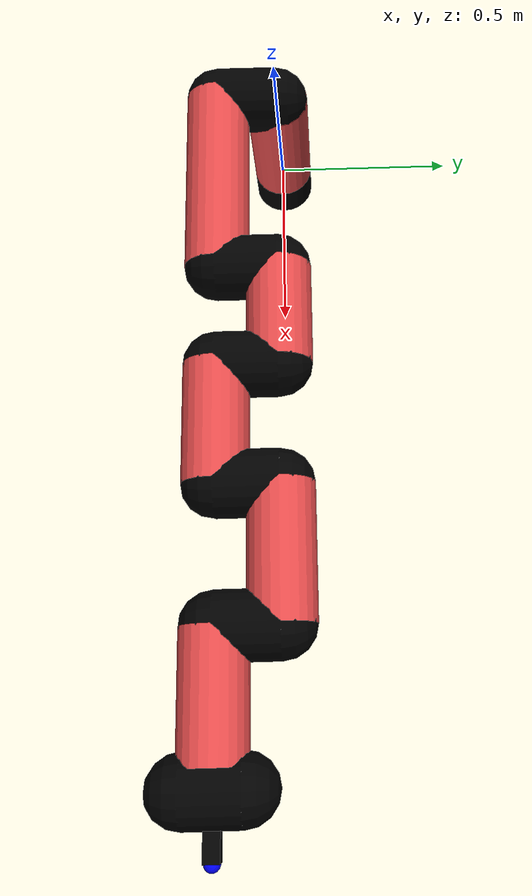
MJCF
<mujoco model="manipulator">
		<compiler angle="degree" coordinate="local" inertiafromgeom="auto" meshdir="meshes/"/>
		<option gravity="0 0 0" integrator="RK4" iterations="30" timestep="0.01"/>

		<default>
		<joint armature="1" limited="true" stiffness="10" damping="15" frictionloss="5.0"/>
		<geom conaffinity="1" condim="3" contype="1" friction=".5 .1 .1" margin="0.002"/>
		<motor ctrllimited="true"/>
		<position ctrllimited="true"/>
		</default>

		<asset>
		<texture builtin="gradient" height="100" rgb1="1.0 1.0 1.0" rgb2="1.0 1.0 1.0" type="skybox" width="100"/>
		<texture builtin="flat" height="32" name="arm_tex" rgb1="0.9 0.3 0.3" type="2d" width="32"/>
		<texture builtin="flat" height="32" name="gripper_tex" rgb1="0.0 0.0 0.0" type="cube" width="32"/>

		<material name="arm_mat" shininess="0.1" specular="0.1" texture="arm_tex"/>
		<material name="gripper_mat" shininess="1" specular="1" texture="gripper_tex"/>
		</asset>

		<worldbody>
		<light cutoff="45" diffuse=".8 .8 .8" dir="0 0.16 -1" directional="false" name="light" pos="0 -2.0 8.0" specular="0.3 0.3 0.3"/>

		<body name="base_link" pos="0 0 -0.1">
		<geom fromto="0 0 0 0 0 0.1" material="arm_mat" name="base_link" rgba="0.0 0.0 0.0 1" size="0.085" type="cylinder"/>
		</body>

		<body name="l1" pos="0 0 0">
<geom fromto="0 0 0 0 0 0.36" material="arm_mat" name="l1" rgba="0.9 0.3 0.3 1" size="0.085" type="cylinder"/>
<geom fromto="0 0 0.36 0 -0.16 0.36" material="arm_mat" name="l1_ex" rgba="0.0 0.0 0.0 1" size="0.085" type="capsule"/>
<joint axis="0 0 1" name="j1" pos="0 0 0" range="-90 90" damping="29.86" frictionloss="8.01"/>

<body name="l2" pos="0 -0.16 0.36">
<geom fromto="0 0 0 0.51 0 0" material="arm_mat" name="l2" rgba="0.9 0.3 0.3 1" size="0.085" type="cylinder"/>
<geom fromto="0.51 0 0 0.51 0.16 0" material="arm_mat" name="l2_ex" rgba="0.0 0.0 0.0 1" size="0.085" type="capsule"/>
<joint axis="0.0 1.0 0.0" name="j2" pos="0 0 0" range="-90 60" damping="25.15" frictionloss="12.07"/>

<body name="l3" pos="0.51 0.16 0">
<geom fromto="0 0 0 0.27 0 0" material="arm_mat" name="l3" rgba="0.9 0.3 0.3 1" size="0.085" type="cylinder"/>
<geom fromto="0.27 0 0 0.27 -0.16 0" material="arm_mat" name="l3_ex" rgba="0.0 0.0 0.0 1" size="0.085" type="capsule"/>
<joint axis="0.0 1.0 0.0" name="j3" pos="0 0 0" range="-30 60" damping="36.01" frictionloss="10.6"/>

<body name="l4" pos="0.27 -0.16 0">
<geom fromto="0 0 0 0.31 0 0" material="arm_mat" name="l4" rgba="0.9 0.3 0.3 1" size="0.085" type="cylinder"/>
<geom fromto="0.31 0 0 0.31 0.16 0" material="arm_mat" name="l4_ex" rgba="0.0 0.0 0.0 1" size="0.085" type="capsule"/>
<joint axis="0.0 1.0 0.0" name="j4" pos="0 0 0" range="-30 60" damping="31.14" frictionloss="10.4"/>

<body name="l5" pos="0.31 0.16 0">
<geom fromto="0 0 0 0.34 0 0" material="arm_mat" name="l5" rgba="0.9 0.3 0.3 1" size="0.085" type="cylinder"/>
<geom fromto="0.34 0 0 0.34 -0.16 0" material="arm_mat" name="l5_ex" rgba="0.0 0.0 0.0 1" size="0.085" type="capsule"/>
<joint axis="0.0 1.0 0.0" name="j5" pos="0 0 0" range="-30 60" damping="29.09" frictionloss="11.43"/>

<body name="l6" pos="0.34 -0.16 0">
<geom fromto="0 0 0 0.31 0 0" material="arm_mat" name="l6" rgba="0.9 0.3 0.3 1" size="0.085" type="cylinder"/>
<joint axis="0.0 1.0 0.0" name="j6" pos="0 0 0" range="-30 60" damping="27.06" frictionloss="8.85"/>

<body name="gripper" pos="0.31 0 0">
<geom fromto="0.05 -0.07 0 0.05 0.07 0" material="gripper_mat" name="gripper" rgba="0.0 0.0 0.0 1" size="0.085" type="capsule"/><joint axis="1 0 0" name="j7" pos="0 0 0" range="-90 90" damping="15" frictionloss="5.0"/><body name="finger" pos="0.1 0 0">
<geom fromto="0 0.0 0 0.1 0.0 0" material="gripper_mat" name="finger" rgba="0.0 0.0 0.0 1" size="0.020 0.06 0.06" type="box"/>
</body>
<site name="current" pos="0.2 0. 0.0" rgba="0. 0. 1.0 1" size="0.02" type="sphere"/>
</body>
</body>
</body>
</body>
</body>
</body>
</body>
</worldbody>
<actuator>
<motor ctrllimited="true" ctrlrange="-1.0 1.0" joint="j1" gear="94.56"/>
<motor ctrllimited="true" ctrlrange="-1.0 1.0" joint="j2" gear="63.89"/>
<motor ctrllimited="true" ctrlrange="-1.0 1.0" joint="j3" gear="82.86"/>
<motor ctrllimited="true" ctrlrange="-1.0 1.0" joint="j4" gear="77.59"/>
<motor ctrllimited="true" ctrlrange="-1.0 1.0" joint="j5" gear="81.31"/>
<motor ctrllimited="true" ctrlrange="-1.0 1.0" joint="j6" gear="93.52"/>
<motor ctrllimited="true" ctrlrange="-1.0 1.0" joint="j7" gear="80"/>
</actuator>
</mujoco>
